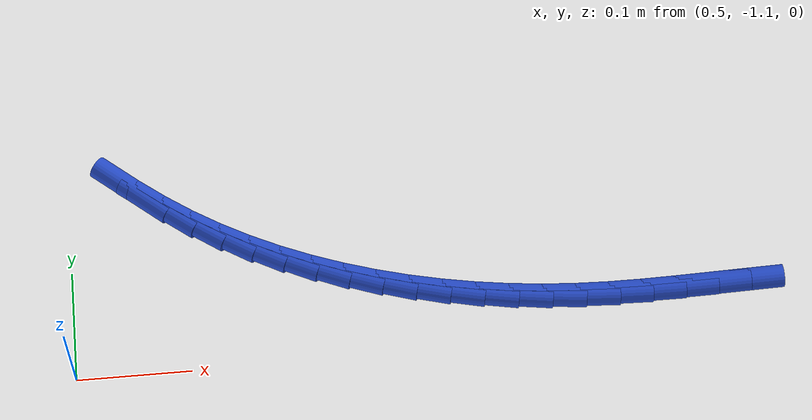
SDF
<sdf version="1.6">
 <world name="default">
  <model name="ground_plane">
   <static>1</static>
   <link name="link">
    <collision name="collision">
     <geometry><plane><normal>0 0 1</normal><size>100 100</size></plane></geometry>
     <surface><friction><ode><mu>100</mu><mu2>50</mu2></ode></friction></surface>
    </collision>
    <visual name="visual">
     <cast_shadows>0</cast_shadows>
     <geometry><plane><normal>0 0 1</normal><size>100 100</size></plane></geometry>
     <material>
      <script><uri>file://media/materials/scripts/gazebo.material</uri><name>Gazebo/WhiteGlow</name></script>
     </material>
    </visual>
   </link>
  </model>
  <model name="line">
   <link name="link_172">
    <pose>1.0799984238000573 -1.0609984527070624 0.01 0 1.57 0.026726094408856614</pose>
    <collision name="collision">
     <geometry><cylinder><radius>0.01</radius><length>0.08</length></cylinder></geometry>
    </collision>
    <visual name="visual">
     <material>
      <script><name>Gazebo/Blue</name><uri>file://media/materials/scripts/gazebo.material</uri></script>
     </material>
     <geometry><cylinder><radius>0.01</radius><length>0.08</length></cylinder></geometry>
    </visual>
   </link>
   <link name="link_173">
    <pose>1.0511620922109386 -1.0617693187753898 0.01 0 1.57 0.025941039051928395</pose>
    <collision name="collision">
     <geometry><cylinder><radius>0.01</radius><length>0.08</length></cylinder></geometry>
    </collision>
    <visual name="visual">
     <material>
      <script><name>Gazebo/Blue</name><uri>file://media/materials/scripts/gazebo.material</uri></script>
     </material>
     <geometry><cylinder><radius>0.01</radius><length>0.08</length></cylinder></geometry>
    </visual>
   </link>
   <link name="link_174">
    <pose>1.022457398654878 -1.0625141154265973 0.01 0 1.57 0.01561155925613437</pose>
    <collision name="collision">
     <geometry><cylinder><radius>0.01</radius><length>0.08</length></cylinder></geometry>
    </collision>
    <visual name="visual">
     <material>
      <script><name>Gazebo/Blue</name><uri>file://media/materials/scripts/gazebo.material</uri></script>
     </material>
     <geometry><cylinder><radius>0.01</radius><length>0.08</length></cylinder></geometry>
    </visual>
   </link>
   <link name="link_175">
    <pose>0.9938002811592929 -1.062961534063487 0.01 0 1.57 -0.004226281756698392</pose>
    <collision name="collision">
     <geometry><cylinder><radius>0.01</radius><length>0.08</length></cylinder></geometry>
    </collision>
    <visual name="visual">
     <material>
      <script><name>Gazebo/Blue</name><uri>file://media/materials/scripts/gazebo.material</uri></script>
     </material>
     <geometry><cylinder><radius>0.01</radius><length>0.08</length></cylinder></geometry>
    </visual>
   </link>
   <link name="link_176">
    <pose>0.9651066777516037 -1.0628402660888627 0.01 0 1.57 -0.03333973992972766</pose>
    <collision name="collision">
     <geometry><cylinder><radius>0.01</radius><length>0.08</length></cylinder></geometry>
    </collision>
    <visual name="visual">
     <material>
      <script><name>Gazebo/Blue</name><uri>file://media/materials/scripts/gazebo.material</uri></script>
     </material>
     <geometry><cylinder><radius>0.01</radius><length>0.08</length></cylinder></geometry>
    </visual>
   </link>
   <link name="link_177">
    <pose>0.9362927088224574 -1.0618792597669358 0.01 0 1.57 -0.06904654549567953</pose>
    <collision name="collision">
     <geometry><cylinder><radius>0.01</radius><length>0.08</length></cylinder></geometry>
    </collision>
    <visual name="visual">
     <material>
      <script><name>Gazebo/Blue</name><uri>file://media/materials/scripts/gazebo.material</uri></script>
     </material>
     <geometry><cylinder><radius>0.01</radius><length>0.08</length></cylinder></geometry>
    </visual>
   </link>
   <link name="link_178">
    <pose>0.9073230245993957 -1.0598758183824082 0.01 0 1.57 -0.10593232292543206</pose>
    <collision name="collision">
     <geometry><cylinder><radius>0.01</radius><length>0.08</length></cylinder></geometry>
    </collision>
    <visual name="visual">
     <material>
      <script><name>Gazebo/Blue</name><uri>file://media/materials/scripts/gazebo.material</uri></script>
     </material>
     <geometry><cylinder><radius>0.01</radius><length>0.08</length></cylinder></geometry>
    </visual>
   </link>
   <link name="link_179">
    <pose>0.878275853900395 -1.0567872224087251 0.01 0 1.57 -0.14346460187886162</pose>
    <collision name="collision">
     <geometry><cylinder><radius>0.01</radius><length>0.08</length></cylinder></geometry>
    </collision>
    <visual name="visual">
     <material>
      <script><name>Gazebo/Blue</name><uri>file://media/materials/scripts/gazebo.material</uri></script>
     </material>
     <geometry><cylinder><radius>0.01</radius><length>0.08</length></cylinder></geometry>
    </visual>
   </link>
   <link name="link_180">
    <pose>0.8492456502794915 -1.0525936051092173 0.01 0 1.57 -0.1818793705487343</pose>
    <collision name="collision">
     <geometry><cylinder><radius>0.01</radius><length>0.08</length></cylinder></geometry>
    </collision>
    <visual name="visual">
     <material>
      <script><name>Gazebo/Blue</name><uri>file://media/materials/scripts/gazebo.material</uri></script>
     </material>
     <geometry><cylinder><radius>0.01</radius><length>0.08</length></cylinder></geometry>
    </visual>
   </link>
   <link name="link_181">
    <pose>0.8203268672907208 -1.0472750997472162 0.01 0 1.57 -0.22140910429944605</pose>
    <collision name="collision">
     <geometry><cylinder><radius>0.01</radius><length>0.08</length></cylinder></geometry>
    </collision>
    <visual name="visual">
     <material>
      <script><name>Gazebo/Blue</name><uri>file://media/materials/scripts/gazebo.material</uri></script>
     </material>
     <geometry><cylinder><radius>0.01</radius><length>0.08</length></cylinder></geometry>
    </visual>
   </link>
   <link name="link_182">
    <pose>0.7916139584881169 -1.0408118395860522 0.01 0 1.57 -0.262283802024443</pose>
    <collision name="collision">
     <geometry><cylinder><radius>0.01</radius><length>0.08</length></cylinder></geometry>
    </collision>
    <visual name="visual">
     <material>
      <script><name>Gazebo/Blue</name><uri>file://media/materials/scripts/gazebo.material</uri></script>
     </material>
     <geometry><cylinder><radius>0.01</radius><length>0.08</length></cylinder></geometry>
    </visual>
   </link>
   <link name="link_183">
    <pose>0.7632013774257163 -1.033183957889057 0.01 0 1.57 -0.3047309653184553</pose>
    <collision name="collision">
     <geometry><cylinder><radius>0.01</radius><length>0.08</length></cylinder></geometry>
    </collision>
    <visual name="visual">
     <material>
      <script><name>Gazebo/Blue</name><uri>file://media/materials/scripts/gazebo.material</uri></script>
     </material>
     <geometry><cylinder><radius>0.01</radius><length>0.08</length></cylinder></geometry>
    </visual>
   </link>
   <link name="link_184">
    <pose>0.735183577657553 -1.0243715879195605 0.01 0 1.57 -0.34897432503252074</pose>
    <collision name="collision">
     <geometry><cylinder><radius>0.01</radius><length>0.08</length></cylinder></geometry>
    </collision>
    <visual name="visual">
     <material>
      <script><name>Gazebo/Blue</name><uri>file://media/materials/scripts/gazebo.material</uri></script>
     </material>
     <geometry><cylinder><radius>0.01</radius><length>0.08</length></cylinder></geometry>
    </visual>
   </link>
   <link name="link_185">
    <pose>0.7076550127376642 -1.0143548629408947 0.01 0 1.57 -0.3952310645402409</pose>
    <collision name="collision">
     <geometry><cylinder><radius>0.01</radius><length>0.08</length></cylinder></geometry>
    </collision>
    <visual name="visual">
     <material>
      <script><name>Gazebo/Blue</name><uri>file://media/materials/scripts/gazebo.material</uri></script>
     </material>
     <geometry><cylinder><radius>0.01</radius><length>0.08</length></cylinder></geometry>
    </visual>
   </link>
   <link name="link_186">
    <pose>0.6807101362200846 -1.0031139162163902 0.01 0 1.57 -0.4437072505279572</pose>
    <collision name="collision">
     <geometry><cylinder><radius>0.01</radius><length>0.08</length></cylinder></geometry>
    </collision>
    <visual name="visual">
     <material>
      <script><name>Gazebo/Blue</name><uri>file://media/materials/scripts/gazebo.material</uri></script>
     </material>
     <geometry><cylinder><radius>0.01</radius><length>0.08</length></cylinder></geometry>
    </visual>
   </link>
   <link name="link_187">
    <pose>0.654443401658849 -0.9906288810093778 0.01 0 1.57 -0.4945911789677738</pose>
    <collision name="collision">
     <geometry><cylinder><radius>0.01</radius><length>0.08</length></cylinder></geometry>
    </collision>
    <visual name="visual">
     <material>
      <script><name>Gazebo/Blue</name><uri>file://media/materials/scripts/gazebo.material</uri></script>
     </material>
     <geometry><cylinder><radius>0.01</radius><length>0.08</length></cylinder></geometry>
    </visual>
   </link>
   <link name="link_188">
    <pose>0.6289492626079927 -0.9768798905831888 0.01 0 1.57 -0.5480444033914033</pose>
    <collision name="collision">
     <geometry><cylinder><radius>0.01</radius><length>0.08</length></cylinder></geometry>
    </collision>
    <visual name="visual">
     <material>
      <script><name>Gazebo/Blue</name><uri>file://media/materials/scripts/gazebo.material</uri></script>
     </material>
     <geometry><cylinder><radius>0.01</radius><length>0.08</length></cylinder></geometry>
    </visual>
   </link>
   <link name="link_189">
    <pose>0.604322172621552 -0.9618470782011542 0.01 0 1.57 -0.6035177087504618</pose>
    <collision name="collision">
     <geometry><cylinder><radius>0.01</radius><length>0.08</length></cylinder></geometry>
    </collision>
    <visual name="visual">
     <material>
      <script><name>Gazebo/Blue</name><uri>file://media/materials/scripts/gazebo.material</uri></script>
     </material>
     <geometry><cylinder><radius>0.01</radius><length>0.08</length></cylinder></geometry>
    </visual>
   </link>
   <link name="link_190">
    <pose>0.5806417560133972 -0.9455238488619039 0.01 0 1.57 -0.6531254333319434</pose>
    <collision name="collision">
     <geometry><cylinder><radius>0.01</radius><length>0.08</length></cylinder></geometry>
    </collision>
    <visual name="visual">
     <material>
      <script><name>Gazebo/Blue</name><uri>file://media/materials/scripts/gazebo.material</uri></script>
     </material>
     <geometry><cylinder><radius>0.01</radius><length>0.08</length></cylinder></geometry>
    </visual>
   </link>
   <link name="link_191">
    <pose>0.5578150640562576 -0.9280580553777407 0.01 0 1.57 -0.6915274992345587</pose>
    <collision name="collision">
     <geometry><cylinder><radius>0.01</radius><length>0.08</length></cylinder></geometry>
    </collision>
    <visual name="visual">
     <material>
      <script><name>Gazebo/Blue</name><uri>file://media/materials/scripts/gazebo.material</uri></script>
     </material>
     <geometry><cylinder><radius>0.01</radius><length>0.08</length></cylinder></geometry>
    </visual>
   </link>
  </model>
 </world>
</sdf>
